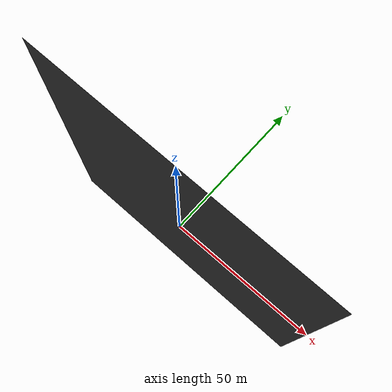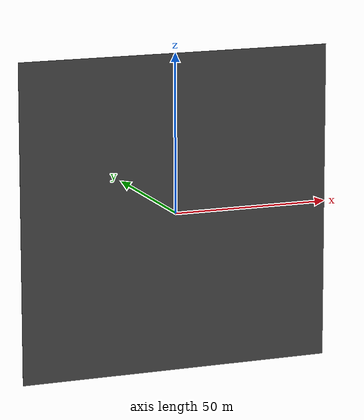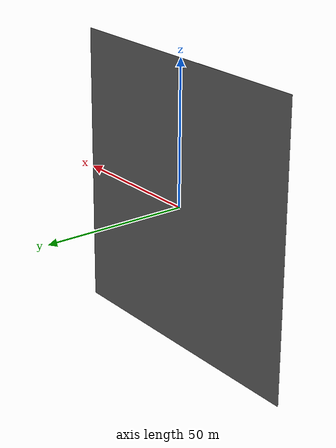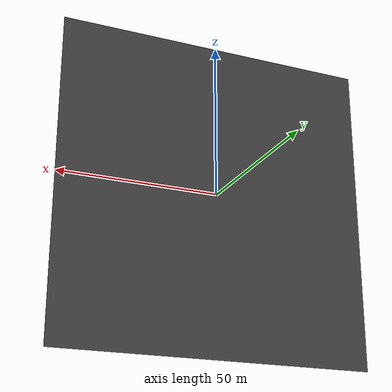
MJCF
<mujoco model="robot_basic_task_2">

    <!--  set the values -kp^ground and -kd^ground  -->
    <option timestep="0.001" o_solref="-100000 -1000" gravity="0 -9.81 0">
        <flag override="enable"/>
    </option>

    <default>
        <geom contype="1" conaffinity="1" friction="0.5 0 0"/> <!-- slide (dynamic), spin(0), roll (0)-->

        <joint type="hinge" damping="0.5"/> <!-- add joint damping-->
    </default>

    <asset>
        <texture type="skybox" builtin="gradient" rgb1="0.6 0.6 0.6" rgb2="0 0 0" width="512" height="512"/>
        <texture name="texplane" type="2d" builtin="checker" rgb1=".25 .25 .25" rgb2=".3 .3 .3" width="512" height="512" mark="cross" markrgb=".8 .8 .8"/>
        <material name="matplane" reflectance="0.3" texture="texplane" texrepeat="1 1" texuniform="true"/>

        <!-- colors -->
        <material name="gray" rgba="0.7 0.7 0.7 1"/>
        <material name="blue" rgba="0 0 1 1"/>
        <material name="red" rgba="1 0 0 1"/>
        <material name="yellow" rgba="1 1 0 1"/>
        <material name="green" rgba="0 1 0 0.5"/>
    </asset>

    <worldbody>
        <light pos="0 0 2" dir="0 -1 -1" directional="true"/>

        <!-- Ground in XZ plane at Y=0 -->
        <body pos="0 0 0">
            <geom name="floor" type="box" size="50 0.01 50" pos="0 -0.01 0" material="matplane" />
        </body>

        <!-- Body (trunk) -->
        <body name="trunk" pos="0 0 0">

            <!-- planar motion of trunk-->
            <joint name="x" type="slide" axis="1 0 0"/>
            <joint name="y" type="slide" axis="0 1 0"/>
            <joint name="theta" type="hinge" axis="0 0 1"/>

            <!-- Trunk geometry (COM) - contype 2 for trunk-->
            <geom name="trunk_geom" type="box" size="0.075 0.125 0.01" material="gray" contype="2" conaffinity="2"/>
            <inertial pos="0 0 0" mass="8" diaginertia="0.0567 0.0567 0.0567"/>

            <!-- Leg 1 - contype 4, conaffinity 5 (collides with ground=1 and trunk=2) -->
            <body name="leg_1" pos="0 -0.125 0"> <!-- located at base of trunk in Y axis, centered in X-->
                <inertial pos="0 -0.11 0" mass="0.25" diaginertia="0.001 1e-6 0.001"/> <!-- set the mass properties relative to body frame-->
                <joint name="q1" type="hinge" axis="0 0 1" limited="true" range="-120 30"/>
                <geom name="leg_1_geom" type="capsule" fromto="0 0 0 0 -0.22 0" size="0.005" material="blue" contype="4" conaffinity="3"/>

                <!-- leg 2 -->
                <body name="leg_2" pos="0 -0.22 0"> <!-- position relative to parent frame (l1)-->
                    <inertial pos="0 -0.11 0" mass="0.25" diaginertia="0.001 1e-6 0.001"/>
                    <joint name="q2" type="hinge" axis="0 0 1" limited="true" range="0 160"/>
                    <geom name="leg_2_geom" type="capsule" fromto="0 0 0 0 -0.22 0" size="0.005" material="red" contype="4" conaffinity="3"/>
                </body>
            </body>

            <!-- leg 3 - contype 8, conaffinity 9 (collides with ground=1 and trunk=2) -->
            <body name="leg_3" pos="0 -0.125 0">
                <inertial pos="0 -0.11 0" mass="0.25" diaginertia="0.001 1e-6 0.001"/>
                <joint name="q3" type="hinge" axis="0 0 1" limited="true" range="-120 30"/>
                <geom name="leg_3_geom" type="capsule" fromto="0 0 0 0 -0.22 0" size="0.005" material="green" contype="8" conaffinity="3"/>

                <!-- leg 4 -->
                <body name="leg_4" pos="0 -0.22 0">
                    <inertial pos="0 -0.11 0" mass="0.25" diaginertia="0.001 1e-6 0.001"/>
                    <joint name="q4" type="hinge" axis="0 0 1" limited="true" range="0 160"/>
                    <geom name="leg_4_geom" type="capsule" fromto="0 0 0 0 -0.22 0" size="0.005" material="yellow" contype="8" conaffinity="3"/>
                </body>
            </body>
        </body>
    </worldbody>

    <actuator>
        <motor name="tau_q1" joint="q1" gear="1" ctrllimited="true" ctrlrange="-30 30"/>
        <motor name="tau_q2" joint="q2" gear="1" ctrllimited="true" ctrlrange="-60 60"/>
        <motor name="tau_q3" joint="q3" gear="1" ctrllimited="true" ctrlrange="-30 30"/>
        <motor name="tau_q4" joint="q4" gear="1" ctrllimited="true" ctrlrange="-60 60"/>
    </actuator>

</mujoco>
